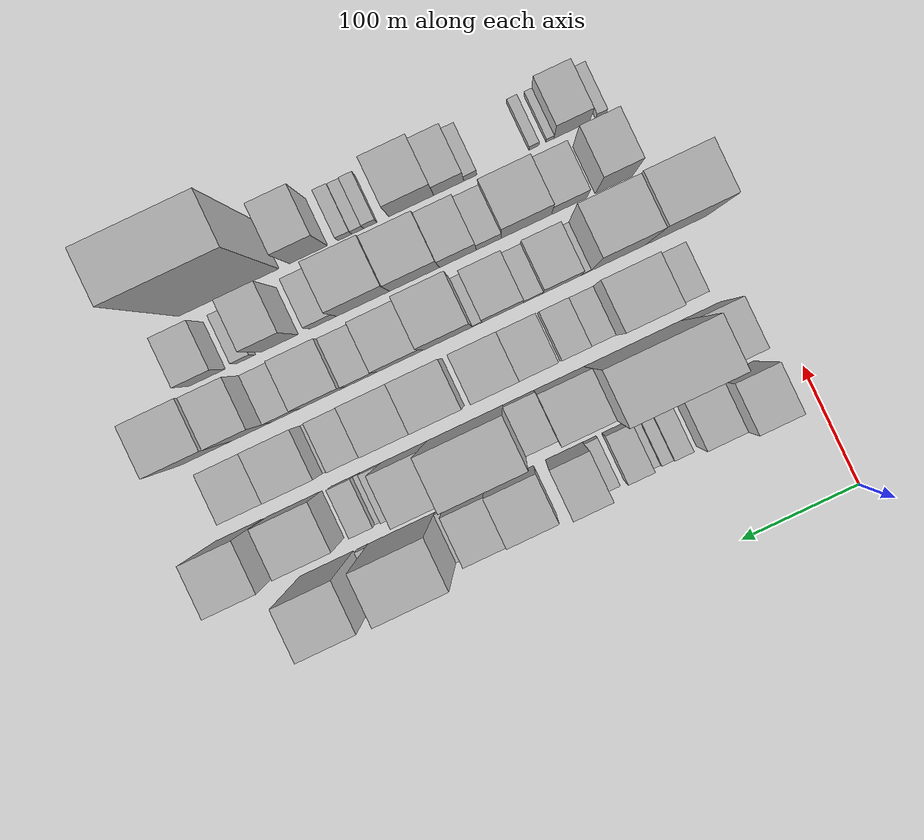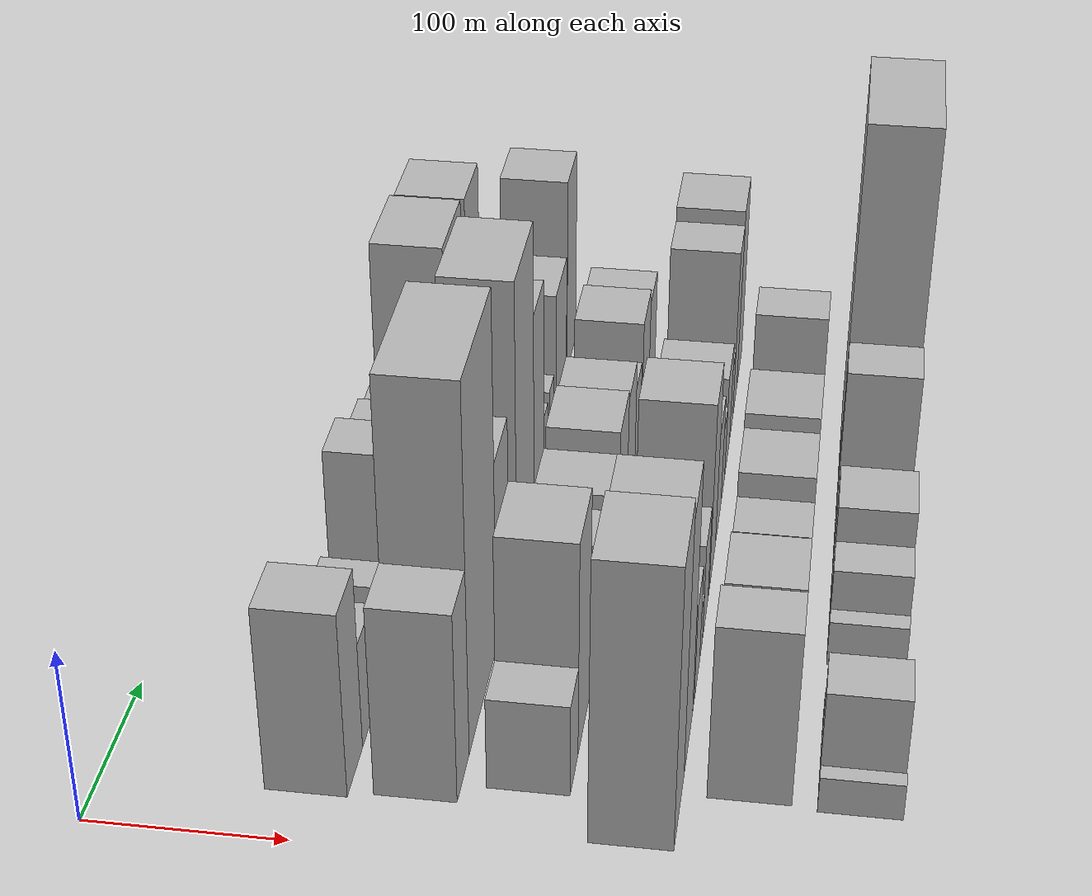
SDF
<sdf version="1.6">
 <world name="default">
  <model name="building_23">
   <static>1</static>
   <pose>100.0000 50.1426 0 0.000000 0.000000 0.000000</pose>
   <link name="link">
    <pose>0 0 54.00 0 0 0</pose>
    <collision name="collision"><geometry><box><size>40.0000 35.1748 108.0000</size></box></geometry></collision>
    <visual name="visual">
     <cast_shadows>0</cast_shadows>
     <geometry><box><size>40.0000 35.1748 108.0000</size></box></geometry>
     <material>
      <script>
       <uri>model://HANNAS_wall/materials/scripts</uri>
       <uri>model://HANNAS_wall/materials/textures</uri>
       <name>vrc/HANNAS_wall</name>
      </script>
     </material>
    </visual>
   </link>
  </model>
  <model name="building_24">
   <static>1</static>
   <pose>100.0000 84.0728 0 0.000000 0.000000 0.000000</pose>
   <link name="link">
    <pose>0 0 31.50 0 0 0</pose>
    <collision name="collision"><geometry><box><size>40.0000 32.6855 63.0000</size></box></geometry></collision>
    <visual name="visual">
     <cast_shadows>0</cast_shadows>
     <geometry><box><size>40.0000 32.6855 63.0000</size></box></geometry>
     <material>
      <script>
       <uri>model://HANNAS_wall/materials/scripts</uri>
       <uri>model://HANNAS_wall/materials/textures</uri>
       <name>vrc/HANNAS_wall</name>
      </script>
     </material>
    </visual>
   </link>
  </model>
  <model name="building_25">
   <static>1</static>
   <pose>100.0000 114.4004 0 0.000000 0.000000 0.000000</pose>
   <link name="link">
    <pose>0 0 15.00 0 0 0</pose>
    <collision name="collision"><geometry><box><size>40.0000 15.9697 30.0000</size></box></geometry></collision>
    <visual name="visual">
     <cast_shadows>0</cast_shadows>
     <geometry><box><size>40.0000 15.9697 30.0000</size></box></geometry>
     <material>
      <script>
       <uri>model://HANNAS_wall/materials/scripts</uri>
       <uri>model://HANNAS_wall/materials/textures</uri>
       <name>vrc/HANNAS_wall</name>
      </script>
     </material>
    </visual>
   </link>
  </model>
  <model name="building_26">
   <static>1</static>
   <pose>100.0000 127.3732 0 0.000000 0.000000 0.000000</pose>
   <link name="link">
    <pose>0 0 12.00 0 0 0</pose>
    <collision name="collision"><geometry><box><size>40.0000 9.9760 24.0000</size></box></geometry></collision>
    <visual name="visual">
     <cast_shadows>0</cast_shadows>
     <geometry><box><size>40.0000 9.9760 24.0000</size></box></geometry>
     <material>
      <script>
       <uri>model://HANNAS_wall/materials/scripts</uri>
       <uri>model://HANNAS_wall/materials/textures</uri>
       <name>vrc/HANNAS_wall</name>
      </script>
     </material>
    </visual>
   </link>
  </model>
  <model name="building_27">
   <static>1</static>
   <pose>100.0000 136.0910 0 0.000000 0.000000 0.000000</pose>
   <link name="link">
    <pose>0 0 7.50 0 0 0</pose>
    <collision name="collision"><geometry><box><size>40.0000 7.4596 15.0000</size></box></geometry></collision>
    <visual name="visual">
     <cast_shadows>0</cast_shadows>
     <geometry><box><size>40.0000 7.4596 15.0000</size></box></geometry>
     <material>
      <script>
       <uri>model://HANNAS_wall/materials/scripts</uri>
       <uri>model://HANNAS_wall/materials/textures</uri>
       <name>vrc/HANNAS_wall</name>
      </script>
     </material>
    </visual>
   </link>
  </model>
  <model name="building_28">
   <static>1</static>
   <pose>100.0000 150.8315 0 0.000000 0.000000 0.000000</pose>
   <link name="link">
    <pose>0 0 21.00 0 0 0</pose>
    <collision name="collision"><geometry><box><size>40.0000 22.0215 42.0000</size></box></geometry></collision>
    <visual name="visual">
     <cast_shadows>0</cast_shadows>
     <geometry><box><size>40.0000 22.0215 42.0000</size></box></geometry>
     <material>
      <script>
       <uri>model://HANNAS_wall/materials/scripts</uri>
       <uri>model://HANNAS_wall/materials/textures</uri>
       <name>vrc/HANNAS_wall</name>
      </script>
     </material>
    </visual>
   </link>
  </model>
  <model name="building_29">
   <static>1</static>
   <pose>100.0000 172.4460 0 0.000000 0.000000 0.000000</pose>
   <link name="link">
    <pose>0 0 12.00 0 0 0</pose>
    <collision name="collision"><geometry><box><size>40.0000 11.2074 24.0000</size></box></geometry></collision>
    <visual name="visual">
     <cast_shadows>0</cast_shadows>
     <geometry><box><size>40.0000 11.2074 24.0000</size></box></geometry>
     <material>
      <script>
       <uri>model://HANNAS_wall/materials/scripts</uri>
       <uri>model://HANNAS_wall/materials/textures</uri>
       <name>vrc/HANNAS_wall</name>
      </script>
     </material>
    </visual>
   </link>
  </model>
  <model name="building_30">
   <static>1</static>
   <pose>100.0000 193.8048 0 0.000000 0.000000 0.000000</pose>
   <link name="link">
    <pose>0 0 48.00 0 0 0</pose>
    <collision name="collision"><geometry><box><size>40.0000 31.5103 96.0000</size></box></geometry></collision>
    <visual name="visual">
     <cast_shadows>0</cast_shadows>
     <geometry><box><size>40.0000 31.5103 96.0000</size></box></geometry>
     <material>
      <script>
       <uri>model://HANNAS_wall/materials/scripts</uri>
       <uri>model://HANNAS_wall/materials/textures</uri>
       <name>vrc/HANNAS_wall</name>
      </script>
     </material>
    </visual>
   </link>
  </model>
  <model name="building_31">
   <static>1</static>
   <pose>100.0000 240.4752 0 0.000000 0.000000 0.000000</pose>
   <link name="link">
    <pose>0 0 37.50 0 0 0</pose>
    <collision name="collision"><geometry><box><size>40.0000 41.8304 75.0000</size></box></geometry></collision>
    <visual name="visual">
     <cast_shadows>0</cast_shadows>
     <geometry><box><size>40.0000 41.8304 75.0000</size></box></geometry>
     <material>
      <script>
       <uri>model://HANNAS_wall/materials/scripts</uri>
       <uri>model://HANNAS_wall/materials/textures</uri>
       <name>vrc/HANNAS_wall</name>
      </script>
     </material>
    </visual>
   </link>
  </model>
  <model name="building_32">
   <static>1</static>
   <pose>100.0000 278.7799 0 0.000000 0.000000 0.000000</pose>
   <link name="link">
    <pose>0 0 33.00 0 0 0</pose>
    <collision name="collision"><geometry><box><size>40.0000 34.7790 66.0000</size></box></geometry></collision>
    <visual name="visual">
     <cast_shadows>0</cast_shadows>
     <geometry><box><size>40.0000 34.7790 66.0000</size></box></geometry>
     <material>
      <script>
       <uri>model://HANNAS_wall/materials/scripts</uri>
       <uri>model://HANNAS_wall/materials/textures</uri>
       <name>vrc/HANNAS_wall</name>
      </script>
     </material>
    </visual>
   </link>
  </model>
  <model name="building_33">
   <static>1</static>
   <pose>100.0000 299.8718 0 0.000000 0.000000 0.000000</pose>
   <link name="link">
    <pose>0 0 9.00 0 0 0</pose>
    <collision name="collision"><geometry><box><size>40.0000 7.4049 18.0000</size></box></geometry></collision>
    <visual name="visual">
     <cast_shadows>0</cast_shadows>
     <geometry><box><size>40.0000 7.4049 18.0000</size></box></geometry>
     <material>
      <script>
       <uri>model://HANNAS_wall/materials/scripts</uri>
       <uri>model://HANNAS_wall/materials/textures</uri>
       <name>vrc/HANNAS_wall</name>
      </script>
     </material>
    </visual>
   </link>
  </model>
  <model name="building_34">
   <static>1</static>
   <pose>100.0000 331.7933 0 0.000000 0.000000 0.000000</pose>
   <link name="link">
    <pose>0 0 73.50 0 0 0</pose>
    <collision name="collision"><geometry><box><size>40.0000 56.4381 147.0000</size></box></geometry></collision>
    <visual name="visual">
     <cast_shadows>0</cast_shadows>
     <geometry><box><size>40.0000 56.4381 147.0000</size></box></geometry>
     <material>
      <script>
       <uri>model://HANNAS_wall/materials/scripts</uri>
       <uri>model://HANNAS_wall/materials/textures</uri>
       <name>vrc/HANNAS_wall</name>
      </script>
     </material>
    </visual>
   </link>
  </model>
  <model name="building_35">
   <static>1</static>
   <pose>100.0000 364.6440 0 0.000000 0.000000 0.000000</pose>
   <link name="link">
    <pose>0 0 10.50 0 0 0</pose>
    <collision name="collision"><geometry><box><size>40.0000 9.2634 21.0000</size></box></geometry></collision>
    <visual name="visual">
     <cast_shadows>0</cast_shadows>
     <geometry><box><size>40.0000 9.2634 21.0000</size></box></geometry>
     <material>
      <script>
       <uri>model://HANNAS_wall/materials/scripts</uri>
       <uri>model://HANNAS_wall/materials/textures</uri>
       <name>vrc/HANNAS_wall</name>
      </script>
     </material>
    </visual>
   </link>
  </model>
  <model name="building_36">
   <static>1</static>
   <pose>100.0000 394.9189 0 0.000000 0.000000 0.000000</pose>
   <link name="link">
    <pose>0 0 70.50 0 0 0</pose>
    <collision name="collision"><geometry><box><size>40.0000 45.2863 141.0000</size></box></geometry></collision>
    <visual name="visual">
     <cast_shadows>0</cast_shadows>
     <geometry><box><size>40.0000 45.2863 141.0000</size></box></geometry>
     <material>
      <script>
       <uri>model://HANNAS_wall/materials/scripts</uri>
       <uri>model://HANNAS_wall/materials/textures</uri>
       <name>vrc/HANNAS_wall</name>
      </script>
     </material>
    </visual>
   </link>
  </model>
  <model name="building_73">
   <static>1</static>
   <pose>152.0000 53.0285 0 0.000000 0.000000 0.000000</pose>
   <link name="link">
    <pose>0 0 55.50 0 0 0</pose>
    <collision name="collision"><geometry><box><size>40.0000 33.8843 111.0000</size></box></geometry></collision>
    <visual name="visual">
     <cast_shadows>0</cast_shadows>
     <geometry><box><size>40.0000 33.8843 111.0000</size></box></geometry>
     <material>
      <script>
       <uri>model://HANNAS_wall/materials/scripts</uri>
       <uri>model://HANNAS_wall/materials/textures</uri>
       <name>vrc/HANNAS_wall</name>
      </script>
     </material>
    </visual>
   </link>
  </model>
  <model name="building_74">
   <static>1</static>
   <pose>152.0000 111.1788 0 0.000000 0.000000 0.000000</pose>
   <link name="link">
    <pose>0 0 106.50 0 0 0</pose>
    <collision name="collision"><geometry><box><size>40.0000 82.4162 213.0000</size></box></geometry></collision>
    <visual name="visual">
     <cast_shadows>0</cast_shadows>
     <geometry><box><size>40.0000 82.4162 213.0000</size></box></geometry>
     <material>
      <script>
       <uri>model://HANNAS_wall/materials/scripts</uri>
       <uri>model://HANNAS_wall/materials/textures</uri>
       <name>vrc/HANNAS_wall</name>
      </script>
     </material>
    </visual>
   </link>
  </model>
  <model name="building_75">
   <static>1</static>
   <pose>152.0000 173.5644 0 0.000000 0.000000 0.000000</pose>
   <link name="link">
    <pose>0 0 57.00 0 0 0</pose>
    <collision name="collision"><geometry><box><size>40.0000 42.3550 114.0000</size></box></geometry></collision>
    <visual name="visual">
     <cast_shadows>0</cast_shadows>
     <geometry><box><size>40.0000 42.3550 114.0000</size></box></geometry>
     <material>
      <script>
       <uri>model://HANNAS_wall/materials/scripts</uri>
       <uri>model://HANNAS_wall/materials/textures</uri>
       <name>vrc/HANNAS_wall</name>
      </script>
     </material>
    </visual>
   </link>
  </model>
  <model name="building_76">
   <static>1</static>
   <pose>152.0000 207.9130 0 0.000000 0.000000 0.000000</pose>
   <link name="link">
    <pose>0 0 24.00 0 0 0</pose>
    <collision name="collision"><geometry><box><size>40.0000 26.3423 48.0000</size></box></geometry></collision>
    <visual name="visual">
     <cast_shadows>0</cast_shadows>
     <geometry><box><size>40.0000 26.3423 48.0000</size></box></geometry>
     <material>
      <script>
       <uri>model://HANNAS_wall/materials/scripts</uri>
       <uri>model://HANNAS_wall/materials/textures</uri>
       <name>vrc/HANNAS_wall</name>
      </script>
     </material>
    </visual>
   </link>
  </model>
  <model name="building_77">
   <static>1</static>
   <pose>152.0000 253.2773 0 0.000000 0.000000 0.000000</pose>
   <link name="link">
    <pose>0 0 88.50 0 0 0</pose>
    <collision name="collision"><geometry><box><size>40.0000 64.3863 177.0000</size></box></geometry></collision>
    <visual name="visual">
     <cast_shadows>0</cast_shadows>
     <geometry><box><size>40.0000 64.3863 177.0000</size></box></geometry>
     <material>
      <script>
       <uri>model://HANNAS_wall/materials/scripts</uri>
       <uri>model://HANNAS_wall/materials/textures</uri>
       <name>vrc/HANNAS_wall</name>
      </script>
     </material>
    </visual>
   </link>
  </model>
  <model name="building_78">
   <static>1</static>
   <pose>152.0000 304.8685 0 0.000000 0.000000 0.000000</pose>
   <link name="link">
    <pose>0 0 60.00 0 0 0</pose>
    <collision name="collision"><geometry><box><size>40.0000 38.7960 120.0000</size></box></geometry></collision>
    <visual name="visual">
     <cast_shadows>0</cast_shadows>
     <geometry><box><size>40.0000 38.7960 120.0000</size></box></geometry>
     <material>
      <script>
       <uri>model://HANNAS_wall/materials/scripts</uri>
       <uri>model://HANNAS_wall/materials/textures</uri>
       <name>vrc/HANNAS_wall</name>
      </script>
     </material>
    </visual>
   </link>
  </model>
  <model name="building_79">
   <static>1</static>
   <pose>152.0000 332.5723 0 0.000000 0.000000 0.000000</pose>
   <link name="link">
    <pose>0 0 15.00 0 0 0</pose>
    <collision name="collision"><geometry><box><size>40.0000 16.6116 30.0000</size></box></geometry></collision>
    <visual name="visual">
     <cast_shadows>0</cast_shadows>
     <geometry><box><size>40.0000 16.6116 30.0000</size></box></geometry>
     <material>
      <script>
       <uri>model://HANNAS_wall/materials/scripts</uri>
       <uri>model://HANNAS_wall/materials/textures</uri>
       <name>vrc/HANNAS_wall</name>
      </script>
     </material>
    </visual>
   </link>
  </model>
  <model name="building_80">
   <static>1</static>
   <pose>152.0000 343.9072 0 0.000000 0.000000 0.000000</pose>
   <link name="link">
    <pose>0 0 7.50 0 0 0</pose>
    <collision name="collision"><geometry><box><size>40.0000 6.0582 15.0000</size></box></geometry></collision>
    <visual name="visual">
     <cast_shadows>0</cast_shadows>
     <geometry><box><size>40.0000 6.0582 15.0000</size></box></geometry>
     <material>
      <script>
       <uri>model://HANNAS_wall/materials/scripts</uri>
       <uri>model://HANNAS_wall/materials/textures</uri>
       <name>vrc/HANNAS_wall</name>
      </script>
     </material>
    </visual>
   </link>
  </model>
  <model name="building_81">
   <static>1</static>
   <pose>152.0000 356.7137 0 0.000000 0.000000 0.000000</pose>
   <link name="link">
    <pose>0 0 16.50 0 0 0</pose>
    <collision name="collision"><geometry><box><size>40.0000 19.5550 33.0000</size></box></geometry></collision>
    <visual name="visual">
     <cast_shadows>0</cast_shadows>
     <geometry><box><size>40.0000 19.5550 33.0000</size></box></geometry>
     <material>
      <script>
       <uri>model://HANNAS_wall/materials/scripts</uri>
       <uri>model://HANNAS_wall/materials/textures</uri>
       <name>vrc/HANNAS_wall</name>
      </script>
     </material>
    </visual>
   </link>
  </model>
  <model name="building_82">
   <static>1</static>
   <pose>152.0000 397.6924 0 0.000000 0.000000 0.000000</pose>
   <link name="link">
    <pose>0 0 40.50 0 0 0</pose>
    <collision name="collision"><geometry><box><size>40.0000 46.4023 81.0000</size></box></geometry></collision>
    <visual name="visual">
     <cast_shadows>0</cast_shadows>
     <geometry><box><size>40.0000 46.4023 81.0000</size></box></geometry>
     <material>
      <script>
       <uri>model://HANNAS_wall/materials/scripts</uri>
       <uri>model://HANNAS_wall/materials/textures</uri>
       <name>vrc/HANNAS_wall</name>
      </script>
     </material>
    </visual>
   </link>
  </model>
  <model name="building_83">
   <static>1</static>
   <pose>152.0000 444.1541 0 0.000000 0.000000 0.000000</pose>
   <link name="link">
    <pose>0 0 64.50 0 0 0</pose>
    <collision name="collision"><geometry><box><size>40.0000 40.5212 129.0000</size></box></geometry></collision>
    <visual name="visual">
     <cast_shadows>0</cast_shadows>
     <geometry><box><size>40.0000 40.5212 129.0000</size></box></geometry>
     <material>
      <script>
       <uri>model://HANNAS_wall/materials/scripts</uri>
       <uri>model://HANNAS_wall/materials/textures</uri>
       <name>vrc/HANNAS_wall</name>
      </script>
     </material>
    </visual>
   </link>
  </model>
  <model name="building_119">
   <static>1</static>
   <pose>204.0000 62.6332 0 0.000000 0.000000 0.000000</pose>
   <link name="link">
    <pose>0 0 27.00 0 0 0</pose>
    <collision name="collision"><geometry><box><size>40.0000 28.8883 54.0000</size></box></geometry></collision>
    <visual name="visual">
     <cast_shadows>0</cast_shadows>
     <geometry><box><size>40.0000 28.8883 54.0000</size></box></geometry>
     <material>
      <script>
       <uri>model://HANNAS_wall/materials/scripts</uri>
       <uri>model://HANNAS_wall/materials/textures</uri>
       <name>vrc/HANNAS_wall</name>
      </script>
     </material>
    </visual>
   </link>
  </model>
  <model name="building_120">
   <static>1</static>
   <pose>204.0000 99.6560 0 0.000000 0.000000 0.000000</pose>
   <link name="link">
    <pose>0 0 63.00 0 0 0</pose>
    <collision name="collision"><geometry><box><size>40.0000 45.1573 126.0000</size></box></geometry></collision>
    <visual name="visual">
     <cast_shadows>0</cast_shadows>
     <geometry><box><size>40.0000 45.1573 126.0000</size></box></geometry>
     <material>
      <script>
       <uri>model://HANNAS_wall/materials/scripts</uri>
       <uri>model://HANNAS_wall/materials/textures</uri>
       <name>vrc/HANNAS_wall</name>
      </script>
     </material>
    </visual>
   </link>
  </model>
  <model name="building_121">
   <static>1</static>
   <pose>204.0000 132.4400 0 0.000000 0.000000 0.000000</pose>
   <link name="link">
    <pose>0 0 19.50 0 0 0</pose>
    <collision name="collision"><geometry><box><size>40.0000 20.4106 39.0000</size></box></geometry></collision>
    <visual name="visual">
     <cast_shadows>0</cast_shadows>
     <geometry><box><size>40.0000 20.4106 39.0000</size></box></geometry>
     <material>
      <script>
       <uri>model://HANNAS_wall/materials/scripts</uri>
       <uri>model://HANNAS_wall/materials/textures</uri>
       <name>vrc/HANNAS_wall</name>
      </script>
     </material>
    </visual>
   </link>
  </model>
  <model name="building_122">
   <static>1</static>
   <pose>204.0000 154.8102 0 0.000000 0.000000 0.000000</pose>
   <link name="link">
    <pose>0 0 24.00 0 0 0</pose>
    <collision name="collision"><geometry><box><size>40.0000 24.3299 48.0000</size></box></geometry></collision>
    <visual name="visual">
     <cast_shadows>0</cast_shadows>
     <geometry><box><size>40.0000 24.3299 48.0000</size></box></geometry>
     <material>
      <script>
       <uri>model://HANNAS_wall/materials/scripts</uri>
       <uri>model://HANNAS_wall/materials/textures</uri>
       <name>vrc/HANNAS_wall</name>
      </script>
     </material>
    </visual>
   </link>
  </model>
  <model name="building_123">
   <static>1</static>
   <pose>204.0000 185.9023 0 0.000000 0.000000 0.000000</pose>
   <link name="link">
    <pose>0 0 28.50 0 0 0</pose>
    <collision name="collision"><geometry><box><size>40.0000 31.8543 57.0000</size></box></geometry></collision>
    <visual name="visual">
     <cast_shadows>0</cast_shadows>
     <geometry><box><size>40.0000 31.8543 57.0000</size></box></geometry>
     <material>
      <script>
       <uri>model://HANNAS_wall/materials/scripts</uri>
       <uri>model://HANNAS_wall/materials/textures</uri>
       <name>vrc/HANNAS_wall</name>
      </script>
     </material>
    </visual>
   </link>
  </model>
  <model name="building_124">
   <static>1</static>
   <pose>204.0000 221.2860 0 0.000000 0.000000 0.000000</pose>
   <link name="link">
    <pose>0 0 33.00 0 0 0</pose>
    <collision name="collision"><geometry><box><size>40.0000 38.9131 66.0000</size></box></geometry></collision>
    <visual name="visual">
     <cast_shadows>0</cast_shadows>
     <geometry><box><size>40.0000 38.9131 66.0000</size></box></geometry>
     <material>
      <script>
       <uri>model://HANNAS_wall/materials/scripts</uri>
       <uri>model://HANNAS_wall/materials/textures</uri>
       <name>vrc/HANNAS_wall</name>
      </script>
     </material>
    </visual>
   </link>
  </model>
  <model name="building_125">
   <static>1</static>
   <pose>204.0000 268.5875 0 0.000000 0.000000 0.000000</pose>
   <link name="link">
    <pose>0 0 37.50 0 0 0</pose>
    <collision name="collision"><geometry><box><size>40.0000 41.6898 75.0000</size></box></geometry></collision>
    <visual name="visual">
     <cast_shadows>0</cast_shadows>
     <geometry><box><size>40.0000 41.6898 75.0000</size></box></geometry>
     <material>
      <script>
       <uri>model://HANNAS_wall/materials/scripts</uri>
       <uri>model://HANNAS_wall/materials/textures</uri>
       <name>vrc/HANNAS_wall</name>
      </script>
     </material>
    </visual>
   </link>
  </model>
  <model name="building_126">
   <static>1</static>
   <pose>204.0000 309.5124 0 0.000000 0.000000 0.000000</pose>
   <link name="link">
    <pose>0 0 34.50 0 0 0</pose>
    <collision name="collision"><geometry><box><size>40.0000 40.1600 69.0000</size></box></geometry></collision>
    <visual name="visual">
     <cast_shadows>0</cast_shadows>
     <geometry><box><size>40.0000 40.1600 69.0000</size></box></geometry>
     <material>
      <script>
       <uri>model://HANNAS_wall/materials/scripts</uri>
       <uri>model://HANNAS_wall/materials/textures</uri>
       <name>vrc/HANNAS_wall</name>
      </script>
     </material>
    </visual>
   </link>
  </model>
  <model name="building_127">
   <static>1</static>
   <pose>204.0000 343.8004 0 0.000000 0.000000 0.000000</pose>
   <link name="link">
    <pose>0 0 25.50 0 0 0</pose>
    <collision name="collision"><geometry><box><size>40.0000 28.4162 51.0000</size></box></geometry></collision>
    <visual name="visual">
     <cast_shadows>0</cast_shadows>
     <geometry><box><size>40.0000 28.4162 51.0000</size></box></geometry>
     <material>
      <script>
       <uri>model://HANNAS_wall/materials/scripts</uri>
       <uri>model://HANNAS_wall/materials/textures</uri>
       <name>vrc/HANNAS_wall</name>
      </script>
     </material>
    </visual>
   </link>
  </model>
  <model name="building_128">
   <static>1</static>
   <pose>204.0000 361.8283 0 0.000000 0.000000 0.000000</pose>
   <link name="link">
    <pose>0 0 9.00 0 0 0</pose>
    <collision name="collision"><geometry><box><size>40.0000 7.6396 18.0000</size></box></geometry></collision>
    <visual name="visual">
     <cast_shadows>0</cast_shadows>
     <geometry><box><size>40.0000 7.6396 18.0000</size></box></geometry>
     <material>
      <script>
       <uri>model://HANNAS_wall/materials/scripts</uri>
       <uri>model://HANNAS_wall/materials/textures</uri>
       <name>vrc/HANNAS_wall</name>
      </script>
     </material>
    </visual>
   </link>
  </model>
  <model name="building_129">
   <static>1</static>
   <pose>204.0000 385.8455 0 0.000000 0.000000 0.000000</pose>
   <link name="link">
    <pose>0 0 36.00 0 0 0</pose>
    <collision name="collision"><geometry><box><size>40.0000 40.3947 72.0000</size></box></geometry></collision>
    <visual name="visual">
     <cast_shadows>0</cast_shadows>
     <geometry><box><size>40.0000 40.3947 72.0000</size></box></geometry>
     <material>
      <script>
       <uri>model://HANNAS_wall/materials/scripts</uri>
       <uri>model://HANNAS_wall/materials/textures</uri>
       <name>vrc/HANNAS_wall</name>
      </script>
     </material>
    </visual>
   </link>
  </model>
  <model name="building_130">
   <static>1</static>
   <pose>204.0000 424.8188 0 0.000000 0.000000 0.000000</pose>
   <link name="link">
    <pose>0 0 31.50 0 0 0</pose>
    <collision name="collision"><geometry><box><size>40.0000 37.5519 63.0000</size></box></geometry></collision>
    <visual name="visual">
     <cast_shadows>0</cast_shadows>
     <geometry><box><size>40.0000 37.5519 63.0000</size></box></geometry>
     <material>
      <script>
       <uri>model://HANNAS_wall/materials/scripts</uri>
       <uri>model://HANNAS_wall/materials/textures</uri>
       <name>vrc/HANNAS_wall</name>
      </script>
     </material>
    </visual>
   </link>
  </model>
  <model name="building_167">
   <static>1</static>
   <pose>256.0000 43.7951 0 0.000000 0.000000 0.000000</pose>
   <link name="link">
    <pose>0 0 81.00 0 0 0</pose>
    <collision name="collision"><geometry><box><size>40.0000 51.4102 162.0000</size></box></geometry></collision>
    <visual name="visual">
     <cast_shadows>0</cast_shadows>
     <geometry><box><size>40.0000 51.4102 162.0000</size></box></geometry>
     <material>
      <script>
       <uri>model://HANNAS_wall/materials/scripts</uri>
       <uri>model://HANNAS_wall/materials/textures</uri>
       <name>vrc/HANNAS_wall</name>
      </script>
     </material>
    </visual>
   </link>
  </model>
  <model name="building_168">
   <static>1</static>
   <pose>256.0000 93.0092 0 0.000000 0.000000 0.000000</pose>
   <link name="link">
    <pose>0 0 75.00 0 0 0</pose>
    <collision name="collision"><geometry><box><size>40.0000 47.0178 150.0000</size></box></geometry></collision>
    <visual name="visual">
     <cast_shadows>0</cast_shadows>
     <geometry><box><size>40.0000 47.0178 150.0000</size></box></geometry>
     <material>
      <script>
       <uri>model://HANNAS_wall/materials/scripts</uri>
       <uri>model://HANNAS_wall/materials/textures</uri>
       <name>vrc/HANNAS_wall</name>
      </script>
     </material>
    </visual>
   </link>
  </model>
  <model name="building_169">
   <static>1</static>
   <pose>256.0000 120.5200 0 0.000000 0.000000 0.000000</pose>
   <link name="link">
    <pose>0 0 9.00 0 0 0</pose>
    <collision name="collision"><geometry><box><size>40.0000 8.0039 18.0000</size></box></geometry></collision>
    <visual name="visual">
     <cast_shadows>0</cast_shadows>
     <geometry><box><size>40.0000 8.0039 18.0000</size></box></geometry>
     <material>
      <script>
       <uri>model://HANNAS_wall/materials/scripts</uri>
       <uri>model://HANNAS_wall/materials/textures</uri>
       <name>vrc/HANNAS_wall</name>
      </script>
     </material>
    </visual>
   </link>
  </model>
  <model name="building_170">
   <static>1</static>
   <pose>256.0000 140.7242 0 0.000000 0.000000 0.000000</pose>
   <link name="link">
    <pose>0 0 30.00 0 0 0</pose>
    <collision name="collision"><geometry><box><size>40.0000 32.4044 60.0000</size></box></geometry></collision>
    <visual name="visual">
     <cast_shadows>0</cast_shadows>
     <geometry><box><size>40.0000 32.4044 60.0000</size></box></geometry>
     <material>
      <script>
       <uri>model://HANNAS_wall/materials/scripts</uri>
       <uri>model://HANNAS_wall/materials/textures</uri>
       <name>vrc/HANNAS_wall</name>
      </script>
     </material>
    </visual>
   </link>
  </model>
  <model name="building_171">
   <static>1</static>
   <pose>256.0000 165.2822 0 0.000000 0.000000 0.000000</pose>
   <link name="link">
    <pose>0 0 15.00 0 0 0</pose>
    <collision name="collision"><geometry><box><size>40.0000 16.7117 30.0000</size></box></geometry></collision>
    <visual name="visual">
     <cast_shadows>0</cast_shadows>
     <geometry><box><size>40.0000 16.7117 30.0000</size></box></geometry>
     <material>
      <script>
       <uri>model://HANNAS_wall/materials/scripts</uri>
       <uri>model://HANNAS_wall/materials/textures</uri>
       <name>vrc/HANNAS_wall</name>
      </script>
     </material>
    </visual>
   </link>
  </model>
  <model name="building_172">
   <static>1</static>
   <pose>256.0000 190.8120 0 0.000000 0.000000 0.000000</pose>
   <link name="link">
    <pose>0 0 30.00 0 0 0</pose>
    <collision name="collision"><geometry><box><size>40.0000 34.3480 60.0000</size></box></geometry></collision>
    <visual name="visual">
     <cast_shadows>0</cast_shadows>
     <geometry><box><size>40.0000 34.3480 60.0000</size></box></geometry>
     <material>
      <script>
       <uri>model://HANNAS_wall/materials/scripts</uri>
       <uri>model://HANNAS_wall/materials/textures</uri>
       <name>vrc/HANNAS_wall</name>
      </script>
     </material>
    </visual>
   </link>
  </model>
  <model name="building_173">
   <static>1</static>
   <pose>256.0000 212.0589 0 0.000000 0.000000 0.000000</pose>
   <link name="link">
    <pose>0 0 9.00 0 0 0</pose>
    <collision name="collision"><geometry><box><size>40.0000 8.1457 18.0000</size></box></geometry></collision>
    <visual name="visual">
     <cast_shadows>0</cast_shadows>
     <geometry><box><size>40.0000 8.1457 18.0000</size></box></geometry>
     <material>
      <script>
       <uri>model://HANNAS_wall/materials/scripts</uri>
       <uri>model://HANNAS_wall/materials/textures</uri>
       <name>vrc/HANNAS_wall</name>
      </script>
     </material>
    </visual>
   </link>
  </model>
  <model name="building_174">
   <static>1</static>
   <pose>256.0000 236.6557 0 0.000000 0.000000 0.000000</pose>
   <link name="link">
    <pose>0 0 58.50 0 0 0</pose>
    <collision name="collision"><geometry><box><size>40.0000 41.0479 117.0000</size></box></geometry></collision>
    <visual name="visual">
     <cast_shadows>0</cast_shadows>
     <geometry><box><size>40.0000 41.0479 117.0000</size></box></geometry>
     <material>
      <script>
       <uri>model://HANNAS_wall/materials/scripts</uri>
       <uri>model://HANNAS_wall/materials/textures</uri>
       <name>vrc/HANNAS_wall</name>
      </script>
     </material>
    </visual>
   </link>
  </model>
  <model name="building_175">
   <static>1</static>
   <pose>256.0000 276.7361 0 0.000000 0.000000 0.000000</pose>
   <link name="link">
    <pose>0 0 36.00 0 0 0</pose>
    <collision name="collision"><geometry><box><size>40.0000 39.1129 72.0000</size></box></geometry></collision>
    <visual name="visual">
     <cast_shadows>0</cast_shadows>
     <geometry><box><size>40.0000 39.1129 72.0000</size></box></geometry>
     <material>
      <script>
       <uri>model://HANNAS_wall/materials/scripts</uri>
       <uri>model://HANNAS_wall/materials/textures</uri>
       <name>vrc/HANNAS_wall</name>
      </script>
     </material>
    </visual>
   </link>
  </model>
  <model name="building_176">
   <static>1</static>
   <pose>256.0000 309.6155 0 0.000000 0.000000 0.000000</pose>
   <link name="link">
    <pose>0 0 24.00 0 0 0</pose>
    <collision name="collision"><geometry><box><size>40.0000 26.6460 48.0000</size></box></geometry></collision>
    <visual name="visual">
     <cast_shadows>0</cast_shadows>
     <geometry><box><size>40.0000 26.6460 48.0000</size></box></geometry>
     <material>
      <script>
       <uri>model://HANNAS_wall/materials/scripts</uri>
       <uri>model://HANNAS_wall/materials/textures</uri>
       <name>vrc/HANNAS_wall</name>
      </script>
     </material>
    </visual>
   </link>
  </model>
  <model name="building_177">
   <static>1</static>
   <pose>256.0000 342.2350 0 0.000000 0.000000 0.000000</pose>
   <link name="link">
    <pose>0 0 33.00 0 0 0</pose>
    <collision name="collision"><geometry><box><size>40.0000 38.5928 66.0000</size></box></geometry></collision>
    <visual name="visual">
     <cast_shadows>0</cast_shadows>
     <geometry><box><size>40.0000 38.5928 66.0000</size></box></geometry>
     <material>
      <script>
       <uri>model://HANNAS_wall/materials/scripts</uri>
       <uri>model://HANNAS_wall/materials/textures</uri>
       <name>vrc/HANNAS_wall</name>
      </script>
     </material>
    </visual>
   </link>
  </model>
  <model name="building_178">
   <static>1</static>
   <pose>256.0000 373.7380 0 0.000000 0.000000 0.000000</pose>
   <link name="link">
    <pose>0 0 24.00 0 0 0</pose>
    <collision name="collision"><geometry><box><size>40.0000 24.4133 48.0000</size></box></geometry></collision>
    <visual name="visual">
     <cast_shadows>0</cast_shadows>
     <geometry><box><size>40.0000 24.4133 48.0000</size></box></geometry>
     <material>
      <script>
       <uri>model://HANNAS_wall/materials/scripts</uri>
       <uri>model://HANNAS_wall/materials/textures</uri>
       <name>vrc/HANNAS_wall</name>
      </script>
     </material>
    </visual>
   </link>
  </model>
  <model name="building_179">
   <static>1</static>
   <pose>256.0000 402.7512 0 0.000000 0.000000 0.000000</pose>
   <link name="link">
    <pose>0 0 55.50 0 0 0</pose>
    <collision name="collision"><geometry><box><size>40.0000 33.6131 111.0000</size></box></geometry></collision>
    <visual name="visual">
     <cast_shadows>0</cast_shadows>
     <geometry><box><size>40.0000 33.6131 111.0000</size></box></geometry>
     <material>
      <script>
       <uri>model://HANNAS_wall/materials/scripts</uri>
       <uri>model://HANNAS_wall/materials/textures</uri>
       <name>vrc/HANNAS_wall</name>
      </script>
     </material>
    </visual>
   </link>
  </model>
  <model name="building_180">
   <static>1</static>
   <pose>256.0000 441.7667 0 0.000000 0.000000 0.000000</pose>
   <link name="link">
    <pose>0 0 60.00 0 0 0</pose>
    <collision name="collision"><geometry><box><size>40.0000 44.4179 120.0000</size></box></geometry></collision>
    <visual name="visual">
     <cast_shadows>0</cast_shadows>
     <geometry><box><size>40.0000 44.4179 120.0000</size></box></geometry>
     <material>
      <script>
       <uri>model://HANNAS_wall/materials/scripts</uri>
       <uri>model://HANNAS_wall/materials/textures</uri>
       <name>vrc/HANNAS_wall</name>
      </script>
     </material>
    </visual>
   </link>
  </model>
  <model name="building_219">
   <static>1</static>
   <pose>308.0000 71.8218 0 0.000000 0.000000 0.000000</pose>
   <link name="link">
    <pose>0 0 51.00 0 0 0</pose>
    <collision name="collision"><geometry><box><size>40.0000 31.5944 102.0000</size></box></geometry></collision>
    <visual name="visual">
     <cast_shadows>0</cast_shadows>
     <geometry><box><size>40.0000 31.5944 102.0000</size></box></geometry>
     <material>
      <script>
       <uri>model://HANNAS_wall/materials/scripts</uri>
       <uri>model://HANNAS_wall/materials/textures</uri>
       <name>vrc/HANNAS_wall</name>
      </script>
     </material>
    </visual>
   </link>
  </model>
  <model name="building_220">
   <static>1</static>
   <pose>308.0000 109.6311 0 0.000000 0.000000 0.000000</pose>
   <link name="link">
    <pose>0 0 27.00 0 0 0</pose>
    <collision name="collision"><geometry><box><size>40.0000 30.0243 54.0000</size></box></geometry></collision>
    <visual name="visual">
     <cast_shadows>0</cast_shadows>
     <geometry><box><size>40.0000 30.0243 54.0000</size></box></geometry>
     <material>
      <script>
       <uri>model://HANNAS_wall/materials/scripts</uri>
       <uri>model://HANNAS_wall/materials/textures</uri>
       <name>vrc/HANNAS_wall</name>
      </script>
     </material>
    </visual>
   </link>
  </model>
  <model name="building_221">
   <static>1</static>
   <pose>308.0000 145.8282 0 0.000000 0.000000 0.000000</pose>
   <link name="link">
    <pose>0 0 37.50 0 0 0</pose>
    <collision name="collision"><geometry><box><size>40.0000 42.3698 75.0000</size></box></geometry></collision>
    <visual name="visual">
     <cast_shadows>0</cast_shadows>
     <geometry><box><size>40.0000 42.3698 75.0000</size></box></geometry>
     <material>
      <script>
       <uri>model://HANNAS_wall/materials/scripts</uri>
       <uri>model://HANNAS_wall/materials/textures</uri>
       <name>vrc/HANNAS_wall</name>
      </script>
     </material>
    </visual>
   </link>
  </model>
  <model name="building_222">
   <static>1</static>
   <pose>308.0000 177.6669 0 0.000000 0.000000 0.000000</pose>
   <link name="link">
    <pose>0 0 21.00 0 0 0</pose>
    <collision name="collision"><geometry><box><size>40.0000 21.3076 42.0000</size></box></geometry></collision>
    <visual name="visual">
     <cast_shadows>0</cast_shadows>
     <geometry><box><size>40.0000 21.3076 42.0000</size></box></geometry>
     <material>
      <script>
       <uri>model://HANNAS_wall/materials/scripts</uri>
       <uri>model://HANNAS_wall/materials/textures</uri>
       <name>vrc/HANNAS_wall</name>
      </script>
     </material>
    </visual>
   </link>
  </model>
  <model name="building_223">
   <static>1</static>
   <pose>308.0000 203.9532 0 0.000000 0.000000 0.000000</pose>
   <link name="link">
    <pose>0 0 30.00 0 0 0</pose>
    <collision name="collision"><geometry><box><size>40.0000 31.2651 60.0000</size></box></geometry></collision>
    <visual name="visual">
     <cast_shadows>0</cast_shadows>
     <geometry><box><size>40.0000 31.2651 60.0000</size></box></geometry>
     <material>
      <script>
       <uri>model://HANNAS_wall/materials/scripts</uri>
       <uri>model://HANNAS_wall/materials/textures</uri>
       <name>vrc/HANNAS_wall</name>
      </script>
     </material>
    </visual>
   </link>
  </model>
  <model name="building_224">
   <static>1</static>
   <pose>308.0000 240.7329 0 0.000000 0.000000 0.000000</pose>
   <link name="link">
    <pose>0 0 37.50 0 0 0</pose>
    <collision name="collision"><geometry><box><size>40.0000 42.2944 75.0000</size></box></geometry></collision>
    <visual name="visual">
     <cast_shadows>0</cast_shadows>
     <geometry><box><size>40.0000 42.2944 75.0000</size></box></geometry>
     <material>
      <script>
       <uri>model://HANNAS_wall/materials/scripts</uri>
       <uri>model://HANNAS_wall/materials/textures</uri>
       <name>vrc/HANNAS_wall</name>
      </script>
     </material>
    </visual>
   </link>
  </model>
  <model name="building_225">
   <static>1</static>
   <pose>308.0000 284.2890 0 0.000000 0.000000 0.000000</pose>
   <link name="link">
    <pose>0 0 42.00 0 0 0</pose>
    <collision name="collision"><geometry><box><size>40.0000 44.8176 84.0000</size></box></geometry></collision>
    <visual name="visual">
     <cast_shadows>0</cast_shadows>
     <geometry><box><size>40.0000 44.8176 84.0000</size></box></geometry>
     <material>
      <script>
       <uri>model://HANNAS_wall/materials/scripts</uri>
       <uri>model://HANNAS_wall/materials/textures</uri>
       <name>vrc/HANNAS_wall</name>
      </script>
     </material>
    </visual>
   </link>
  </model>
  <model name="building_226">
   <static>1</static>
   <pose>308.0000 318.1078 0 0.000000 0.000000 0.000000</pose>
   <link name="link">
    <pose>0 0 21.00 0 0 0</pose>
    <collision name="collision"><geometry><box><size>40.0000 22.8201 42.0000</size></box></geometry></collision>
    <visual name="visual">
     <cast_shadows>0</cast_shadows>
     <geometry><box><size>40.0000 22.8201 42.0000</size></box></geometry>
     <material>
      <script>
       <uri>model://HANNAS_wall/materials/scripts</uri>
       <uri>model://HANNAS_wall/materials/textures</uri>
       <name>vrc/HANNAS_wall</name>
      </script>
     </material>
    </visual>
   </link>
  </model>
  <model name="building_227">
   <static>1</static>
   <pose>308.0000 355.0848 0 0.000000 0.000000 0.000000</pose>
   <link name="link">
    <pose>0 0 49.50 0 0 0</pose>
    <collision name="collision"><geometry><box><size>40.0000 31.1339 99.0000</size></box></geometry></collision>
    <visual name="visual">
     <cast_shadows>0</cast_shadows>
     <geometry><box><size>40.0000 31.1339 99.0000</size></box></geometry>
     <material>
      <script>
       <uri>model://HANNAS_wall/materials/scripts</uri>
       <uri>model://HANNAS_wall/materials/textures</uri>
       <name>vrc/HANNAS_wall</name>
      </script>
     </material>
    </visual>
   </link>
  </model>
  <model name="building_228">
   <static>1</static>
   <pose>308.0000 383.5092 0 0.000000 0.000000 0.000000</pose>
   <link name="link">
    <pose>0 0 15.00 0 0 0</pose>
    <collision name="collision"><geometry><box><size>40.0000 15.7151 30.0000</size></box></geometry></collision>
    <visual name="visual">
     <cast_shadows>0</cast_shadows>
     <geometry><box><size>40.0000 15.7151 30.0000</size></box></geometry>
     <material>
      <script>
       <uri>model://HANNAS_wall/materials/scripts</uri>
       <uri>model://HANNAS_wall/materials/textures</uri>
       <name>vrc/HANNAS_wall</name>
      </script>
     </material>
    </visual>
   </link>
  </model>
  <model name="building_229">
   <static>1</static>
   <pose>308.0000 416.5885 0 0.000000 0.000000 0.000000</pose>
   <link name="link">
    <pose>0 0 30.00 0 0 0</pose>
    <collision name="collision"><geometry><box><size>40.0000 30.4435 60.0000</size></box></geometry></collision>
    <visual name="visual">
     <cast_shadows>0</cast_shadows>
     <geometry><box><size>40.0000 30.4435 60.0000</size></box></geometry>
     <material>
      <script>
       <uri>model://HANNAS_wall/materials/scripts</uri>
       <uri>model://HANNAS_wall/materials/textures</uri>
       <name>vrc/HANNAS_wall</name>
      </script>
     </material>
    </visual>
   </link>
  </model>
  <model name="building_269">
   <static>1</static>
   <pose>360.0000 58.0304 0 0.000000 0.000000 0.000000</pose>
   <link name="link">
    <pose>0 0 10.50 0 0 0</pose>
    <collision name="collision"><geometry><box><size>40.0000 8.9268 21.0000</size></box></geometry></collision>
    <visual name="visual">
     <cast_shadows>0</cast_shadows>
     <geometry><box><size>40.0000 8.9268 21.0000</size></box></geometry>
     <material>
      <script>
       <uri>model://HANNAS_wall/materials/scripts</uri>
       <uri>model://HANNAS_wall/materials/textures</uri>
       <name>vrc/HANNAS_wall</name>
      </script>
     </material>
    </visual>
   </link>
  </model>
  <model name="building_270">
   <static>1</static>
   <pose>360.0000 82.7224 0 0.000000 0.000000 0.000000</pose>
   <link name="link">
    <pose>0 0 30.00 0 0 0</pose>
    <collision name="collision"><geometry><box><size>40.0000 30.4573 60.0000</size></box></geometry></collision>
    <visual name="visual">
     <cast_shadows>0</cast_shadows>
     <geometry><box><size>40.0000 30.4573 60.0000</size></box></geometry>
     <material>
      <script>
       <uri>model://HANNAS_wall/materials/scripts</uri>
       <uri>model://HANNAS_wall/materials/textures</uri>
       <name>vrc/HANNAS_wall</name>
      </script>
     </material>
    </visual>
   </link>
  </model>
  <model name="building_271">
   <static>1</static>
   <pose>360.0000 101.2788 0 0.000000 0.000000 0.000000</pose>
   <link name="link">
    <pose>0 0 7.50 0 0 0</pose>
    <collision name="collision"><geometry><box><size>40.0000 6.6556 15.0000</size></box></geometry></collision>
    <visual name="visual">
     <cast_shadows>0</cast_shadows>
     <geometry><box><size>40.0000 6.6556 15.0000</size></box></geometry>
     <material>
      <script>
       <uri>model://HANNAS_wall/materials/scripts</uri>
       <uri>model://HANNAS_wall/materials/textures</uri>
       <name>vrc/HANNAS_wall</name>
      </script>
     </material>
    </visual>
   </link>
  </model>
  <model name="building_272">
   <static>1</static>
   <pose>360.0000 114.8856 0 0.000000 0.000000 0.000000</pose>
   <link name="link">
    <pose>0 0 9.00 0 0 0</pose>
    <collision name="collision"><geometry><box><size>40.0000 8.5579 18.0000</size></box></geometry></collision>
    <visual name="visual">
     <cast_shadows>0</cast_shadows>
     <geometry><box><size>40.0000 8.5579 18.0000</size></box></geometry>
     <material>
      <script>
       <uri>model://HANNAS_wall/materials/scripts</uri>
       <uri>model://HANNAS_wall/materials/textures</uri>
       <name>vrc/HANNAS_wall</name>
      </script>
     </material>
    </visual>
   </link>
  </model>
  <model name="building_273">
   <static>1</static>
   <pose>360.0000 168.8442 0 0.000000 0.000000 0.000000</pose>
   <link name="link">
    <pose>0 0 13.50 0 0 0</pose>
    <collision name="collision"><geometry><box><size>40.0000 11.1198 27.0000</size></box></geometry></collision>
    <visual name="visual">
     <cast_shadows>0</cast_shadows>
     <geometry><box><size>40.0000 11.1198 27.0000</size></box></geometry>
     <material>
      <script>
       <uri>model://HANNAS_wall/materials/scripts</uri>
       <uri>model://HANNAS_wall/materials/textures</uri>
       <name>vrc/HANNAS_wall</name>
      </script>
     </material>
    </visual>
   </link>
  </model>
  <model name="building_274">
   <static>1</static>
   <pose>360.0000 187.1802 0 0.000000 0.000000 0.000000</pose>
   <link name="link">
    <pose>0 0 25.50 0 0 0</pose>
    <collision name="collision"><geometry><box><size>40.0000 25.5521 51.0000</size></box></geometry></collision>
    <visual name="visual">
     <cast_shadows>0</cast_shadows>
     <geometry><box><size>40.0000 25.5521 51.0000</size></box></geometry>
     <material>
      <script>
       <uri>model://HANNAS_wall/materials/scripts</uri>
       <uri>model://HANNAS_wall/materials/textures</uri>
       <name>vrc/HANNAS_wall</name>
      </script>
     </material>
    </visual>
   </link>
  </model>
  <model name="building_275">
   <static>1</static>
   <pose>360.0000 218.9654 0 0.000000 0.000000 0.000000</pose>
   <link name="link">
    <pose>0 0 36.00 0 0 0</pose>
    <collision name="collision"><geometry><box><size>40.0000 38.0183 72.0000</size></box></geometry></collision>
    <visual name="visual">
     <cast_shadows>0</cast_shadows>
     <geometry><box><size>40.0000 38.0183 72.0000</size></box></geometry>
     <material>
      <script>
       <uri>model://HANNAS_wall/materials/scripts</uri>
       <uri>model://HANNAS_wall/materials/textures</uri>
       <name>vrc/HANNAS_wall</name>
      </script>
     </material>
    </visual>
   </link>
  </model>
  <model name="building_276">
   <static>1</static>
   <pose>360.0000 253.6070 0 0.000000 0.000000 0.000000</pose>
   <link name="link">
    <pose>0 0 12.00 0 0 0</pose>
    <collision name="collision"><geometry><box><size>40.0000 11.2649 24.0000</size></box></geometry></collision>
    <visual name="visual">
     <cast_shadows>0</cast_shadows>
     <geometry><box><size>40.0000 11.2649 24.0000</size></box></geometry>
     <material>
      <script>
       <uri>model://HANNAS_wall/materials/scripts</uri>
       <uri>model://HANNAS_wall/materials/textures</uri>
       <name>vrc/HANNAS_wall</name>
      </script>
     </material>
    </visual>
   </link>
  </model>
  <model name="building_277">
   <static>1</static>
   <pose>360.0000 264.2330 0 0.000000 0.000000 0.000000</pose>
   <link name="link">
    <pose>0 0 10.50 0 0 0</pose>
    <collision name="collision"><geometry><box><size>40.0000 9.9870 21.0000</size></box></geometry></collision>
    <visual name="visual">
     <cast_shadows>0</cast_shadows>
     <geometry><box><size>40.0000 9.9870 21.0000</size></box></geometry>
     <material>
      <script>
       <uri>model://HANNAS_wall/materials/scripts</uri>
       <uri>model://HANNAS_wall/materials/textures</uri>
       <name>vrc/HANNAS_wall</name>
      </script>
     </material>
    </visual>
   </link>
  </model>
  <model name="building_278">
   <static>1</static>
   <pose>360.0000 275.1121 0 0.000000 0.000000 0.000000</pose>
   <link name="link">
    <pose>0 0 12.00 0 0 0</pose>
    <collision name="collision"><geometry><box><size>40.0000 11.7713 24.0000</size></box></geometry></collision>
    <visual name="visual">
     <cast_shadows>0</cast_shadows>
     <geometry><box><size>40.0000 11.7713 24.0000</size></box></geometry>
     <material>
      <script>
       <uri>model://HANNAS_wall/materials/scripts</uri>
       <uri>model://HANNAS_wall/materials/textures</uri>
       <name>vrc/HANNAS_wall</name>
      </script>
     </material>
    </visual>
   </link>
  </model>
  <model name="building_279">
   <static>1</static>
   <pose>360.0000 306.1628 0 0.000000 0.000000 0.000000</pose>
   <link name="link">
    <pose>0 0 48.00 0 0 0</pose>
    <collision name="collision"><geometry><box><size>40.0000 32.3301 96.0000</size></box></geometry></collision>
    <visual name="visual">
     <cast_shadows>0</cast_shadows>
     <geometry><box><size>40.0000 32.3301 96.0000</size></box></geometry>
     <material>
      <script>
       <uri>model://HANNAS_wall/materials/scripts</uri>
       <uri>model://HANNAS_wall/materials/textures</uri>
       <name>vrc/HANNAS_wall</name>
      </script>
     </material>
    </visual>
   </link>
  </model>
  <model name="building_280">
   <static>1</static>
   <pose>360.0000 373.8799 0 0.000000 0.000000 0.000000</pose>
   <link name="link">
    <pose>0 0 111.00 0 0 0</pose>
    <collision name="collision"><geometry><box><size>40.0000 85.1041 222.0000</size></box></geometry></collision>
    <visual name="visual">
     <cast_shadows>0</cast_shadows>
     <geometry><box><size>40.0000 85.1041 222.0000</size></box></geometry>
     <material>
      <script>
       <uri>model://HANNAS_wall/materials/scripts</uri>
       <uri>model://HANNAS_wall/materials/textures</uri>
       <name>vrc/HANNAS_wall</name>
      </script>
     </material>
    </visual>
   </link>
  </model>
 </world>
</sdf>
